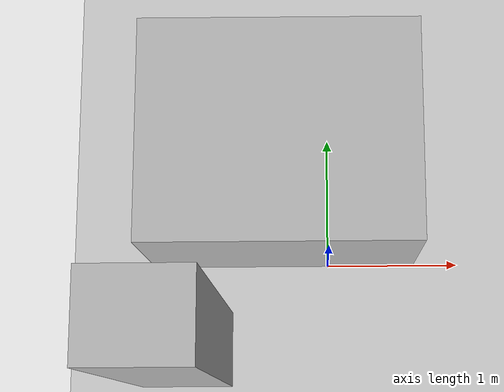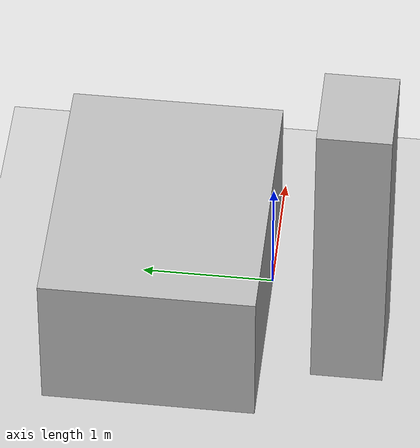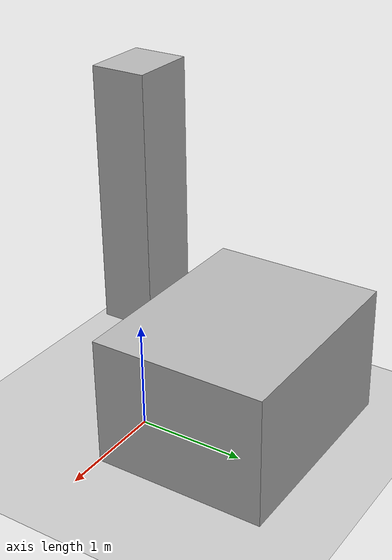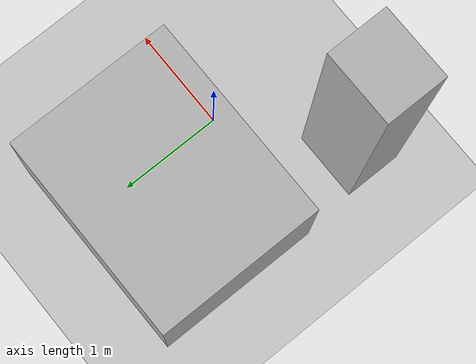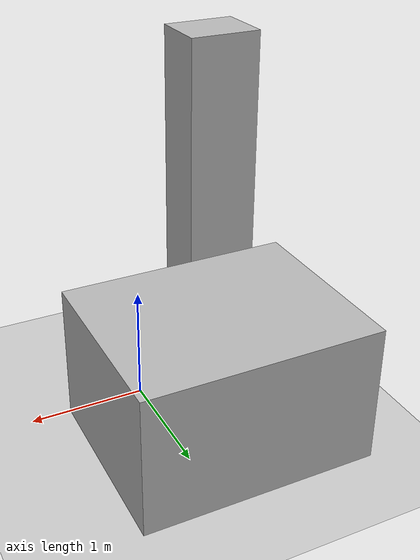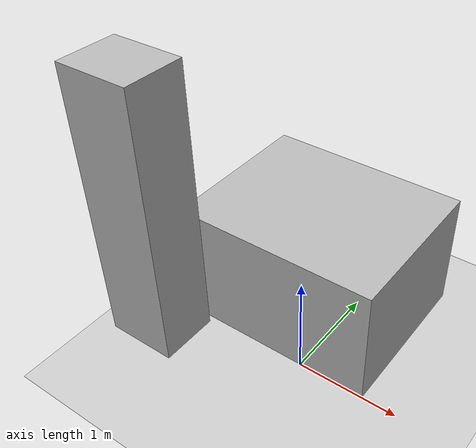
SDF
<?xml version="1.0" ?>
<sdf version="1.4">
  <world name="simple_environment">
    <include>
      <uri>model://ground_plane</uri>
    </include>
    <include>
      <uri>model://sun</uri>
    </include>

  <model name='pillar'>
      <pose> -1.02 -0.675 1.75 0 0 0</pose>
      <link name='link'>
        <collision name='collision'>
          <geometry>
            <box>
              <size>0.64 0.53 2.5</size>
            </box>
          </geometry>
        </collision>
        <visual name='visual'>
          <geometry>
            <box>
              <size>0.64 0.53 2.5</size>
            </box>
          </geometry>
        </visual>
        <self_collide>0</self_collide>
        <kinematic>0</kinematic>
        <gravity>1</gravity>
      </link>
      <static>0</static>
    </model>

    <model name='matress'>
        <pose>-.34 0.80 0.6 0 0 0</pose>
        <link name='link'>
          <collision name='collision'>
            <geometry>
              <box>
                <size>2 1.6 1.2</size>
              </box>
            </geometry>
          </collision>
          <visual name='visual'>
            <geometry>
              <box>
                <size>2. 1.6 1.2</size>
              </box>
            </geometry>
          </visual>
          <self_collide>0</self_collide>
          <kinematic>0</kinematic>
          <gravity>1</gravity>
        </link>
        <static>0</static>
      </model>

  </world>
</sdf>
